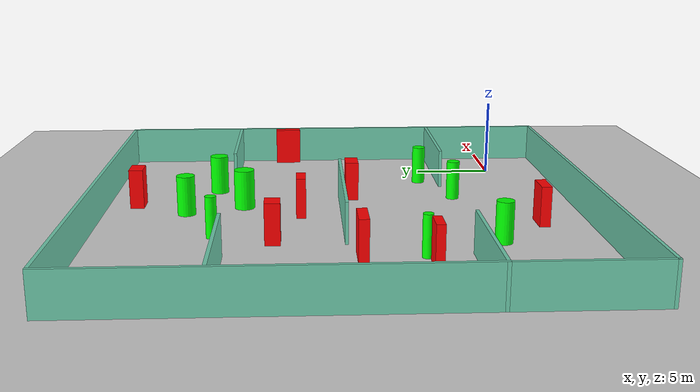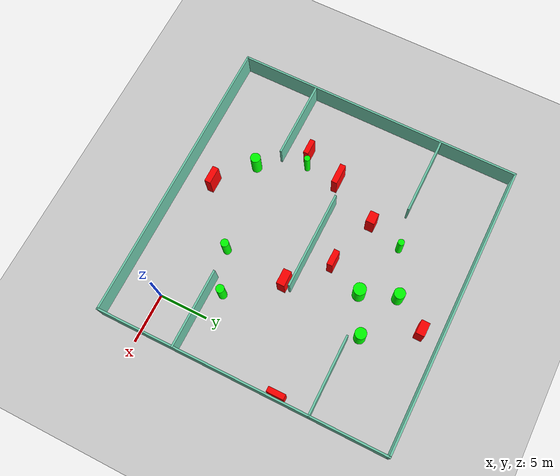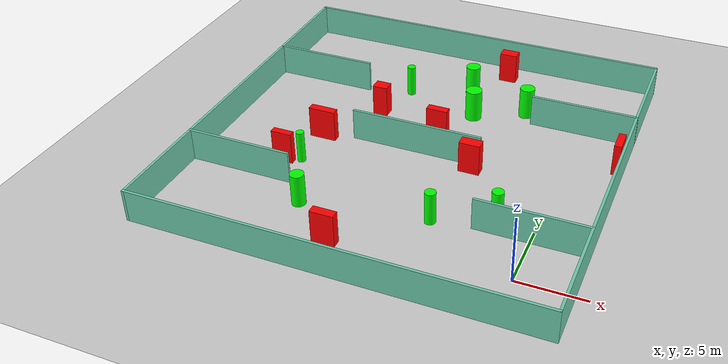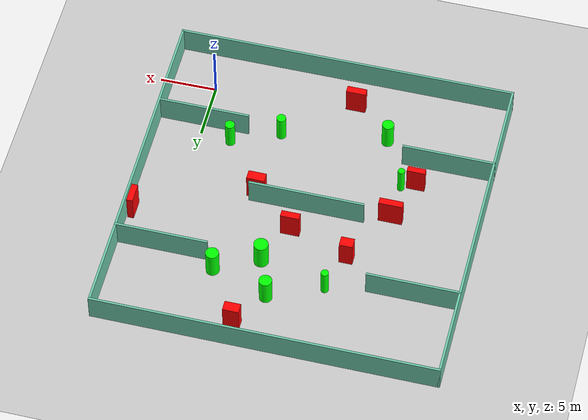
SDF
<sdf version="1.7">
 <world name="default">
  <light name="sun" type="directional">
   <pose>0 0 10 0 -0 0</pose>
   <diffuse>0.8 0.8 0.8 1</diffuse>
   <specular>0.2 0.2 0.2 1</specular>
   <attenuation>
    <range>1000</range>
    <constant>0.9</constant>
    <linear>0.01</linear>
    <quadratic>0.001</quadratic>
   </attenuation>
   <direction>-0.5 0.1 -0.9</direction>
   <spot><inner_angle>0</inner_angle><outer_angle>0</outer_angle><falloff>0</falloff></spot>
  </light>
  <model name="ground_plane">
   <static>1</static>
   <link name="link">
    <collision name="collision">
     <geometry><plane><normal>0 0 1</normal><size>100 100</size></plane></geometry>
     <surface>
      <contact><collide_bitmask>65535</collide_bitmask></contact>
      <friction><ode><mu>100</mu><mu2>50</mu2></ode></friction>
     </surface>
    </collision>
    <visual name="visual">
     <cast_shadows>0</cast_shadows>
     <geometry><plane><normal>0 0 1</normal><size>100 100</size></plane></geometry>
     <material>
      <script><uri>file://media/materials/scripts/gazebo.material</uri><name>Gazebo/Grey</name></script>
     </material>
    </visual>
   </link>
  </model>
  <gravity>0 0 -9.8</gravity>
  <magnetic_field>6e-06 2.3e-05 -4.2e-05</magnetic_field>
  <atmosphere type="adiabatic"/>
  <physics type="ode">
   <max_step_size>0.001</max_step_size>
   <real_time_factor>1</real_time_factor>
   <real_time_update_rate>1000</real_time_update_rate>
  </physics>
  <scene><ambient>0.4 0.4 0.4 1</ambient><background>0.7 0.7 0.7 1</background><shadows>1</shadows></scene>
  <spherical_coordinates>
   <surface_model>EARTH_WGS84</surface_model>
   <latitude_deg>0</latitude_deg>
   <longitude_deg>0</longitude_deg>
   <elevation>0</elevation>
   <heading_deg>0</heading_deg>
  </spherical_coordinates>
  <model name="my_base_walls">
   <link name="Wall_10">
    <collision name="Wall_10_Collision">
     <geometry><box><size>8.2 0.2 2.5</size></box></geometry>
     <pose>0 0 1.25 0 -0 0</pose>
    </collision>
    <visual name="Wall_10_Visual">
     <pose>0 0 1.25 0 -0 0</pose>
     <geometry><box><size>8.2 0.2 2.5</size></box></geometry>
     <material>
      <script><uri>file://media/materials/scripts/gazebo.material</uri><name>Gazebo/Grey</name></script>
      <ambient>0.435294 0.796078 0.67451 1</ambient>
     </material>
     <meta><layer>0</layer></meta>
    </visual>
    <pose>-11 -7 0 0 -0 0</pose>
   </link>
   <link name="Wall_12">
    <collision name="Wall_12_Collision">
     <geometry><box><size>8.2 0.2 2.5</size></box></geometry>
     <pose>0 0 1.25 0 -0 0</pose>
    </collision>
    <visual name="Wall_12_Visual">
     <pose>0 0 1.25 0 -0 0</pose>
     <geometry><box><size>8.2 0.2 2.5</size></box></geometry>
     <material>
      <script><uri>file://media/materials/scripts/gazebo.material</uri><name>Gazebo/Grey</name></script>
      <ambient>0.435294 0.796078 0.67451 1</ambient>
     </material>
     <meta><layer>0</layer></meta>
    </visual>
    <pose>-11 7 0 0 -0 0</pose>
   </link>
   <link name="Wall_14">
    <collision name="Wall_14_Collision">
     <geometry><box><size>8.2 0.2 2.5</size></box></geometry>
     <pose>0 0 1.25 0 -0 0</pose>
    </collision>
    <visual name="Wall_14_Visual">
     <pose>0 0 1.25 0 -0 0</pose>
     <geometry><box><size>8.2 0.2 2.5</size></box></geometry>
     <material>
      <script><uri>file://media/materials/scripts/gazebo.material</uri><name>Gazebo/Grey</name></script>
      <ambient>0.435294 0.796078 0.67451 1</ambient>
     </material>
     <meta><layer>0</layer></meta>
    </visual>
    <pose>11 7 0 0 -0 3.14159</pose>
   </link>
   <link name="Wall_16">
    <collision name="Wall_16_Collision">
     <geometry><box><size>10.2 0.2 2.5</size></box></geometry>
     <pose>0 0 1.25 0 -0 0</pose>
    </collision>
    <visual name="Wall_16_Visual">
     <pose>0 0 1.25 0 -0 0</pose>
     <geometry><box><size>10.2 0.2 2.5</size></box></geometry>
     <material>
      <script><uri>file://media/materials/scripts/gazebo.material</uri><name>Gazebo/Grey</name></script>
      <ambient>0.435294 0.796078 0.67451 1</ambient>
     </material>
     <meta><layer>0</layer></meta>
    </visual>
    <pose>0 0 0 0 -0 3.14159</pose>
   </link>
   <link name="Wall_2">
    <collision name="Wall_2_Collision">
     <geometry><box><size>30.2 0.2 2.5</size></box></geometry>
     <pose>0 0 1.25 0 -0 0</pose>
    </collision>
    <visual name="Wall_2_Visual">
     <pose>0 0 1.25 0 -0 0</pose>
     <geometry><box><size>30.2 0.2 2.5</size></box></geometry>
     <material>
      <script><uri>file://media/materials/scripts/gazebo.material</uri><name>Gazebo/Grey</name></script>
      <ambient>0.435294 0.796078 0.67451 1</ambient>
     </material>
     <meta><layer>0</layer></meta>
    </visual>
    <pose>0 -15 0 0 -0 3.14159</pose>
   </link>
   <link name="Wall_3">
    <collision name="Wall_3_Collision">
     <geometry><box><size>30.2 0.2 2.5</size></box></geometry>
     <pose>0 0 1.25 0 -0 0</pose>
    </collision>
    <visual name="Wall_3_Visual">
     <pose>0 0 1.25 0 -0 0</pose>
     <geometry><box><size>30.2 0.2 2.5</size></box></geometry>
     <material>
      <script><uri>file://media/materials/scripts/gazebo.material</uri><name>Gazebo/Grey</name></script>
      <ambient>0.435294 0.796078 0.67451 1</ambient>
     </material>
     <meta><layer>0</layer></meta>
    </visual>
    <pose>-15 0 0 0 -0 1.5708</pose>
   </link>
   <link name="Wall_4">
    <collision name="Wall_4_Collision">
     <geometry><box><size>30.2 0.2 2.5</size></box></geometry>
     <pose>0 0 1.25 0 -0 0</pose>
    </collision>
    <visual name="Wall_4_Visual">
     <pose>0 0 1.25 0 -0 0</pose>
     <geometry><box><size>30.2 0.2 2.5</size></box></geometry>
     <material>
      <script><uri>file://media/materials/scripts/gazebo.material</uri><name>Gazebo/Grey</name></script>
      <ambient>0.435294 0.796078 0.67451 1</ambient>
     </material>
     <meta><layer>0</layer></meta>
    </visual>
    <pose>0 15 0 0 -0 0</pose>
   </link>
   <link name="Wall_6">
    <collision name="Wall_6_Collision">
     <geometry><box><size>30.2 0.2 2.5</size></box></geometry>
     <pose>0 0 1.25 0 -0 0</pose>
    </collision>
    <visual name="Wall_6_Visual">
     <pose>0 0 1.25 0 -0 0</pose>
     <geometry><box><size>30.2 0.2 2.5</size></box></geometry>
     <material>
      <script><uri>file://media/materials/scripts/gazebo.material</uri><name>Gazebo/Grey</name></script>
      <ambient>0.435294 0.796078 0.67451 1</ambient>
     </material>
     <meta><layer>0</layer></meta>
    </visual>
    <pose>15 0 0 0 -0 1.5708</pose>
   </link>
   <link name="Wall_8">
    <collision name="Wall_8_Collision">
     <geometry><box><size>8.2 0.2 2.5</size></box></geometry>
     <pose>0 0 1.25 0 -0 0</pose>
    </collision>
    <visual name="Wall_8_Visual">
     <pose>0 0 1.25 0 -0 0</pose>
     <geometry><box><size>8.2 0.2 2.5</size></box></geometry>
     <material>
      <script><uri>file://media/materials/scripts/gazebo.material</uri><name>Gazebo/Grey</name></script>
      <ambient>0.435294 0.796078 0.67451 1</ambient>
     </material>
     <meta><layer>0</layer></meta>
    </visual>
    <pose>11 -7 0 0 -0 3.14159</pose>
   </link>
   <static>1</static>
   <pose>-11 11 0 0 -0 0</pose>
  </model>
  <model name="cylinder1">
   <static>1</static>
   <link name="link">
    <inertial>
     <mass>1</mass>
     <inertia><ixx>0.5</ixx><ixy>0</ixy><ixz>0</ixz><iyy>0.5</iyy><iyz>0</iyz><izz>1</izz></inertia>
    </inertial>
    <collision name="collision">
     <geometry><cylinder><radius>0.42653111625929</radius><length>2.5</length></cylinder></geometry>
    </collision>
    <visual name="visual">
     <geometry><cylinder><radius>0.42653111625929</radius><length>2.5</length></cylinder></geometry>
     <material>
      <ambient>0 1 0 1</ambient>
      <diffuse>0 1 0 1</diffuse>
      <specular>0.1 0.1 0.1 1</specular>
      <emissive>0 0 0 0</emissive>
     </material>
    </visual>
   </link>
   <pose>-2.7541206888981975 5.338924765747031 1.25 0 0 0</pose>
  </model>
  <model name="cylinder2">
   <static>1</static>
   <link name="link">
    <inertial>
     <mass>1</mass>
     <inertia><ixx>0.5</ixx><ixy>0</ixy><ixz>0</ixz><iyy>0.5</iyy><iyz>0</iyz><izz>1</izz></inertia>
    </inertial>
    <collision name="collision">
     <geometry><cylinder><radius>0.5204588698437722</radius><length>2.5</length></cylinder></geometry>
    </collision>
    <visual name="visual">
     <geometry><cylinder><radius>0.5204588698437722</radius><length>2.5</length></cylinder></geometry>
     <material>
      <ambient>0 1 0 1</ambient>
      <diffuse>0 1 0 1</diffuse>
      <specular>0.1 0.1 0.1 1</specular>
      <emissive>0 0 0 0</emissive>
     </material>
    </visual>
   </link>
   <pose>-16.161141260709243 2.0558600751137703 1.25 0 0 0</pose>
  </model>
  <model name="cylinder3">
   <static>1</static>
   <link name="link">
    <inertial>
     <mass>1</mass>
     <inertia><ixx>0.5</ixx><ixy>0</ixy><ixz>0</ixz><iyy>0.5</iyy><iyz>0</iyz><izz>1</izz></inertia>
    </inertial>
    <collision name="collision">
     <geometry><cylinder><radius>0.5650651872295225</radius><length>2.5</length></cylinder></geometry>
    </collision>
    <visual name="visual">
     <geometry><cylinder><radius>0.5650651872295225</radius><length>2.5</length></cylinder></geometry>
     <material>
      <ambient>0 1 0 1</ambient>
      <diffuse>0 1 0 1</diffuse>
      <specular>0.1 0.1 0.1 1</specular>
      <emissive>0 0 0 0</emissive>
     </material>
    </visual>
   </link>
   <pose>-9.860149158717412 20.707052341528655 1.25 0 0 0</pose>
  </model>
  <model name="cylinder4">
   <static>1</static>
   <link name="link">
    <inertial>
     <mass>1</mass>
     <inertia><ixx>0.5</ixx><ixy>0</ixy><ixz>0</ixz><iyy>0.5</iyy><iyz>0</iyz><izz>1</izz></inertia>
    </inertial>
    <collision name="collision">
     <geometry><cylinder><radius>0.331705122816756</radius><length>2.5</length></cylinder></geometry>
    </collision>
    <visual name="visual">
     <geometry><cylinder><radius>0.331705122816756</radius><length>2.5</length></cylinder></geometry>
     <material>
      <ambient>0 1 0 1</ambient>
      <diffuse>0 1 0 1</diffuse>
      <specular>0.1 0.1 0.1 1</specular>
      <emissive>0 0 0 0</emissive>
     </material>
    </visual>
   </link>
   <pose>-14.51779676973852 18.75485954185783 1.25 0 0 0</pose>
  </model>
  <model name="cylinder5">
   <static>1</static>
   <link name="link">
    <inertial>
     <mass>1</mass>
     <inertia><ixx>0.5</ixx><ixy>0</ixy><ixz>0</ixz><iyy>0.5</iyy><iyz>0</iyz><izz>1</izz></inertia>
    </inertial>
    <collision name="collision">
     <geometry><cylinder><radius>0.3063442015390632</radius><length>2.5</length></cylinder></geometry>
    </collision>
    <visual name="visual">
     <geometry><cylinder><radius>0.3063442015390632</radius><length>2.5</length></cylinder></geometry>
     <material>
      <ambient>0 1 0 1</ambient>
      <diffuse>0 1 0 1</diffuse>
      <specular>0.1 0.1 0.1 1</specular>
      <emissive>0 0 0 0</emissive>
     </material>
    </visual>
   </link>
   <pose>-18.406435135619656 6.723301333738158 1.25 0 0 0</pose>
  </model>
  <model name="cylinder6">
   <static>1</static>
   <link name="link">
    <inertial>
     <mass>1</mass>
     <inertia><ixx>0.5</ixx><ixy>0</ixy><ixz>0</ixz><iyy>0.5</iyy><iyz>0</iyz><izz>1</izz></inertia>
    </inertial>
    <collision name="collision">
     <geometry><cylinder><radius>0.5784280226705387</radius><length>2.5</length></cylinder></geometry>
    </collision>
    <visual name="visual">
     <geometry><cylinder><radius>0.5784280226705387</radius><length>2.5</length></cylinder></geometry>
     <material>
      <ambient>0 1 0 1</ambient>
      <diffuse>0 1 0 1</diffuse>
      <specular>0.1 0.1 0.1 1</specular>
      <emissive>0 0 0 0</emissive>
     </material>
    </visual>
   </link>
   <pose>-4.784410683479962 19.03461875240383 1.25 0 0 0</pose>
  </model>
  <model name="cylinder7">
   <static>1</static>
   <link name="link">
    <inertial>
     <mass>1</mass>
     <inertia><ixx>0.5</ixx><ixy>0</ixy><ixz>0</ixz><iyy>0.5</iyy><iyz>0</iyz><izz>1</izz></inertia>
    </inertial>
    <collision name="collision">
     <geometry><cylinder><radius>0.638134058375125</radius><length>2.5</length></cylinder></geometry>
    </collision>
    <visual name="visual">
     <geometry><cylinder><radius>0.638134058375125</radius><length>2.5</length></cylinder></geometry>
     <material>
      <ambient>0 1 0 1</ambient>
      <diffuse>0 1 0 1</diffuse>
      <specular>0.1 0.1 0.1 1</specular>
      <emissive>0 0 0 0</emissive>
     </material>
    </visual>
   </link>
   <pose>-8.573362000148208 17.161025288673837 1.25 0 0 0</pose>
  </model>
  <model name="cylinder8">
   <static>1</static>
   <link name="link">
    <inertial>
     <mass>1</mass>
     <inertia><ixx>0.5</ixx><ixy>0</ixy><ixz>0</ixz><iyy>0.5</iyy><iyz>0</iyz><izz>1</izz></inertia>
    </inertial>
    <collision name="collision">
     <geometry><cylinder><radius>0.41224130798074005</radius><length>2.5</length></cylinder></geometry>
    </collision>
    <visual name="visual">
     <geometry><cylinder><radius>0.41224130798074005</radius><length>2.5</length></cylinder></geometry>
     <material>
      <ambient>0 1 0 1</ambient>
      <diffuse>0 1 0 1</diffuse>
      <specular>0.1 0.1 0.1 1</specular>
      <emissive>0 0 0 0</emissive>
     </material>
    </visual>
   </link>
   <pose>-6.928821405351465 3.5688868537982703 1.25 0 0 0</pose>
  </model>
  <model name="box1">
   <static>1</static>
   <link name="link">
    <inertial>
     <mass>1</mass>
     <inertia><ixx>0.083</ixx><ixy>0</ixy><ixz>0</ixz><iyy>0.083</iyy><iyz>0</iyz><izz>0.083</izz></inertia>
    </inertial>
    <collision name="collision">
     <geometry><box><size>1.6477219193693846 0.6008086315881385 2.5</size></box></geometry>
    </collision>
    <visual name="visual">
     <geometry><box><size>1.6477219193693846 0.6008086315881385 2.5</size></box></geometry>
     <material>
      <ambient>1 0 0 1</ambient>
      <diffuse>1 0 0 1</diffuse>
      <specular>0.1 0.1 0.1 1</specular>
      <emissive>0 0 0 0</emissive>
     </material>
    </visual>
    <sensor name="my_contact" type="contact">
     <contact><collision>box_collision</collision><topic>__default_topic__</topic></contact>
    </sensor>
   </link>
   <pose>-10.23909085902622 13.570825323210634 1.25 0 0 0</pose>
  </model>
  <model name="box2">
   <static>1</static>
   <link name="link">
    <inertial>
     <mass>1</mass>
     <inertia><ixx>0.083</ixx><ixy>0</ixy><ixz>0</ixz><iyy>0.083</iyy><iyz>0</iyz><izz>0.083</izz></inertia>
    </inertial>
    <collision name="collision">
     <geometry><box><size>0.5423394354254384 1.7554986255463072 2.5</size></box></geometry>
    </collision>
    <visual name="visual">
     <geometry><box><size>0.5423394354254384 1.7554986255463072 2.5</size></box></geometry>
     <material>
      <ambient>1 0 0 1</ambient>
      <diffuse>1 0 0 1</diffuse>
      <specular>0.1 0.1 0.1 1</specular>
      <emissive>0 0 0 0</emissive>
     </material>
    </visual>
    <sensor name="my_contact" type="contact">
     <contact><collision>box_collision</collision><topic>__default_topic__</topic></contact>
    </sensor>
   </link>
   <pose>3.5123071398369063 14.492604304267498 1.25 0 0 0</pose>
  </model>
  <model name="box3">
   <static>1</static>
   <link name="link">
    <inertial>
     <mass>1</mass>
     <inertia><ixx>0.083</ixx><ixy>0</ixy><ixz>0</ixz><iyy>0.083</iyy><iyz>0</iyz><izz>0.083</izz></inertia>
    </inertial>
    <collision name="collision">
     <geometry><box><size>1.3976255767950239 0.8760654930806144 2.5</size></box></geometry>
    </collision>
    <visual name="visual">
     <geometry><box><size>1.3976255767950239 0.8760654930806144 2.5</size></box></geometry>
     <material>
      <ambient>1 0 0 1</ambient>
      <diffuse>1 0 0 1</diffuse>
      <specular>0.1 0.1 0.1 1</specular>
      <emissive>0 0 0 0</emissive>
     </material>
    </visual>
    <sensor name="my_contact" type="contact">
     <contact><collision>box_collision</collision><topic>__default_topic__</topic></contact>
    </sensor>
   </link>
   <pose>-7.788005573328704 23.999041964286235 1.25 0 0 0</pose>
  </model>
  <model name="box4">
   <static>1</static>
   <link name="link">
    <inertial>
     <mass>1</mass>
     <inertia><ixx>0.083</ixx><ixy>0</ixy><ixz>0</ixz><iyy>0.083</iyy><iyz>0</iyz><izz>0.083</izz></inertia>
    </inertial>
    <collision name="collision">
     <geometry><box><size>1.7371197444062576 0.6430811190887036 2.5</size></box></geometry>
    </collision>
    <visual name="visual">
     <geometry><box><size>1.7371197444062576 0.6430811190887036 2.5</size></box></geometry>
     <material>
      <ambient>1 0 0 1</ambient>
      <diffuse>1 0 0 1</diffuse>
      <specular>0.1 0.1 0.1 1</specular>
      <emissive>0 0 0 0</emissive>
     </material>
    </visual>
    <sensor name="my_contact" type="contact">
     <contact><collision>box_collision</collision><topic>__default_topic__</topic></contact>
    </sensor>
   </link>
   <pose>-12.61740446230075 -0.9907684018852203 1.25 0 0 0</pose>
  </model>
  <model name="box5">
   <static>1</static>
   <link name="link">
    <inertial>
     <mass>1</mass>
     <inertia><ixx>0.083</ixx><ixy>0</ixy><ixz>0</ixz><iyy>0.083</iyy><iyz>0</iyz><izz>0.083</izz></inertia>
    </inertial>
    <collision name="collision">
     <geometry><box><size>1.5910971138149186 0.5210532594424052 2.5</size></box></geometry>
    </collision>
    <visual name="visual">
     <geometry><box><size>1.5910971138149186 0.5210532594424052 2.5</size></box></geometry>
     <material>
      <ambient>1 0 0 1</ambient>
      <diffuse>1 0 0 1</diffuse>
      <specular>0.1 0.1 0.1 1</specular>
      <emissive>0 0 0 0</emissive>
     </material>
    </visual>
    <sensor name="my_contact" type="contact">
     <contact><collision>box_collision</collision><topic>__default_topic__</topic></contact>
    </sensor>
   </link>
   <pose>-19.64938481607735 6.323680237582382 1.25 0 0 0</pose>
  </model>
  <model name="box6">
   <static>1</static>
   <link name="link">
    <inertial>
     <mass>1</mass>
     <inertia><ixx>0.083</ixx><ixy>0</ixy><ixz>0</ixz><iyy>0.083</iyy><iyz>0</iyz><izz>0.083</izz></inertia>
    </inertial>
    <collision name="collision">
     <geometry><box><size>2.0990991169045103 0.5989426376206335 2.5</size></box></geometry>
    </collision>
    <visual name="visual">
     <geometry><box><size>2.0990991169045103 0.5989426376206335 2.5</size></box></geometry>
     <material>
      <ambient>1 0 0 1</ambient>
      <diffuse>1 0 0 1</diffuse>
      <specular>0.1 0.1 0.1 1</specular>
      <emissive>0 0 0 0</emissive>
     </material>
    </visual>
    <sensor name="my_contact" type="contact">
     <contact><collision>box_collision</collision><topic>__default_topic__</topic></contact>
    </sensor>
   </link>
   <pose>-18.299147384847206 10.251330516877484 1.25 0 0 0</pose>
  </model>
  <model name="box7">
   <static>1</static>
   <link name="link">
    <inertial>
     <mass>1</mass>
     <inertia><ixx>0.083</ixx><ixy>0</ixy><ixz>0</ixz><iyy>0.083</iyy><iyz>0</iyz><izz>0.083</izz></inertia>
    </inertial>
    <collision name="collision">
     <geometry><box><size>1.595086808103639 0.8409335113192504 2.5</size></box></geometry>
    </collision>
    <visual name="visual">
     <geometry><box><size>1.595086808103639 0.8409335113192504 2.5</size></box></geometry>
     <material>
      <ambient>1 0 0 1</ambient>
      <diffuse>1 0 0 1</diffuse>
      <specular>0.1 0.1 0.1 1</specular>
      <emissive>0 0 0 0</emissive>
     </material>
    </visual>
    <sensor name="my_contact" type="contact">
     <contact><collision>box_collision</collision><topic>__default_topic__</topic></contact>
    </sensor>
   </link>
   <pose>-6.404372460732844 10.236779482449975 1.25 0 0 0</pose>
  </model>
  <model name="box8">
   <static>1</static>
   <link name="link">
    <inertial>
     <mass>1</mass>
     <inertia><ixx>0.083</ixx><ixy>0</ixy><ixz>0</ixz><iyy>0.083</iyy><iyz>0</iyz><izz>0.083</izz></inertia>
    </inertial>
    <collision name="collision">
     <geometry><box><size>1.1774597538388423 0.9065456605664532 2.5</size></box></geometry>
    </collision>
    <visual name="visual">
     <geometry><box><size>1.1774597538388423 0.9065456605664532 2.5</size></box></geometry>
     <material>
      <ambient>1 0 0 1</ambient>
      <diffuse>1 0 0 1</diffuse>
      <specular>0.1 0.1 0.1 1</specular>
      <emissive>0 0 0 0</emissive>
     </material>
    </visual>
    <sensor name="my_contact" type="contact">
     <contact><collision>box_collision</collision><topic>__default_topic__</topic></contact>
    </sensor>
   </link>
   <pose>-15.589888166116939 15.200467165022616 1.25 0 0 0</pose>
  </model>
 </world>
</sdf>
